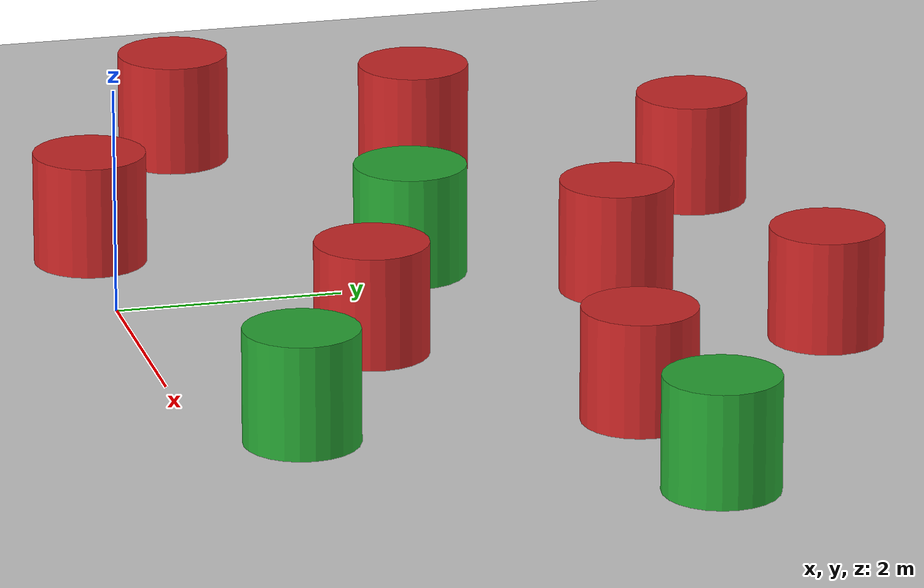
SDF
<sdf version="1.7">
 <world name="default">
  <model name="ground_plane">
   <static>1</static>
   <link name="link">
    <collision name="collision">
     <geometry><plane><normal>0 0 1</normal><size>100 100</size></plane></geometry>
     <surface>
      <contact><collide_bitmask>65535</collide_bitmask></contact>
      <friction><ode><mu>100</mu><mu2>50</mu2></ode></friction>
     </surface>
    </collision>
    <visual name="visual">
     <cast_shadows>0</cast_shadows>
     <geometry><plane><normal>0 0 1</normal><size>100 100</size></plane></geometry>
     <material>
      <script><uri>file://media/materials/scripts/gazebo.material</uri><name>Gazebo/Grey</name></script>
     </material>
    </visual>
   </link>
  </model>
  <model name="Astar_Dij_test.world_0">
   <link name="link_0">
    <inertial>
     <mass>20</mass>
     <inertia><ixx>2.91667</ixx><ixy>0</ixy><ixz>0</ixz><iyy>2.91667</iyy><iyz>0</iyz><izz>2.5</izz></inertia>
    </inertial>
    <pose>3.54109 -0.119892 0 0 -0 0</pose>
    <visual name="visual">
     <geometry><cylinder><radius>0.5</radius><length>1</length></cylinder></geometry>
     <material>
      <lighting>1</lighting>
      <script><uri>file://media/materials/scripts/gazebo.material</uri><name>Gazebo/Red</name></script>
      <shader type="pixel"><normal_map>__default__</normal_map></shader>
      <ambient>1 0 0 1</ambient>
      <diffuse>1 0 0 1</diffuse>
      <specular>0.1 0.1 0.1 1</specular>
      <emissive>0 0 0 1</emissive>
     </material>
    </visual>
    <collision name="collision">
     <geometry><cylinder><radius>0.5</radius><length>1</length></cylinder></geometry>
     <surface>
      <friction>
       <ode><mu>1</mu><mu2>1</mu2><fdir1>0 0 0</fdir1><slip1>0</slip1><slip2>0</slip2></ode>
       <torsional>
        <coefficient>1</coefficient>
        <patch_radius>0</patch_radius>
        <surface_radius>0</surface_radius>
        <use_patch_radius>1</use_patch_radius>
        <ode><slip>0</slip></ode>
       </torsional>
      </friction>
      <bounce><restitution_coefficient>0</restitution_coefficient><threshold>1e+06</threshold></bounce>
      <contact>
       <collide_without_contact>0</collide_without_contact>
       <collide_without_contact_bitmask>1</collide_without_contact_bitmask>
       <collide_bitmask>1</collide_bitmask>
       <ode>
        <soft_cfm>0</soft_cfm>
        <soft_erp>0.2</soft_erp>
        <kp>1e+13</kp>
        <kd>1</kd>
        <max_vel>0.01</max_vel>
        <min_depth>0</min_depth>
       </ode>
       <bullet>
        <split_impulse>1</split_impulse>
        <split_impulse_penetration_threshold>-0.01</split_impulse_penetration_threshold>
        <soft_cfm>0</soft_cfm>
        <soft_erp>0.2</soft_erp>
        <kp>1e+13</kp>
        <kd>1</kd>
       </bullet>
      </contact>
     </surface>
    </collision>
   </link>
   <link name="link_0_clone">
    <inertial>
     <mass>20</mass>
     <inertia><ixx>2.91667</ixx><ixy>0</ixy><ixz>0</ixz><iyy>2.91667</iyy><iyz>0</iyz><izz>2.5</izz></inertia>
    </inertial>
    <pose>5.36627 -3.50187 0 0 -0 0</pose>
    <visual name="visual">
     <geometry><cylinder><radius>0.5</radius><length>1</length></cylinder></geometry>
     <material>
      <lighting>1</lighting>
      <script><uri>file://media/materials/scripts/gazebo.material</uri><name>Gazebo/Red</name></script>
      <shader type="pixel"><normal_map>__default__</normal_map></shader>
      <ambient>1 0 0 1</ambient>
      <diffuse>1 0 0 1</diffuse>
      <specular>0.1 0.1 0.1 1</specular>
      <emissive>0 0 0 1</emissive>
     </material>
    </visual>
    <collision name="collision">
     <geometry><cylinder><radius>0.5</radius><length>1</length></cylinder></geometry>
     <surface>
      <friction>
       <ode><mu>1</mu><mu2>1</mu2><fdir1>0 0 0</fdir1><slip1>0</slip1><slip2>0</slip2></ode>
       <torsional>
        <coefficient>1</coefficient>
        <patch_radius>0</patch_radius>
        <surface_radius>0</surface_radius>
        <use_patch_radius>1</use_patch_radius>
        <ode><slip>0</slip></ode>
       </torsional>
      </friction>
      <bounce><restitution_coefficient>0</restitution_coefficient><threshold>1e+06</threshold></bounce>
      <contact>
       <collide_without_contact>0</collide_without_contact>
       <collide_without_contact_bitmask>1</collide_without_contact_bitmask>
       <collide_bitmask>1</collide_bitmask>
       <ode>
        <soft_cfm>0</soft_cfm>
        <soft_erp>0.2</soft_erp>
        <kp>1e+13</kp>
        <kd>1</kd>
        <max_vel>0.01</max_vel>
        <min_depth>0</min_depth>
       </ode>
       <bullet>
        <split_impulse>1</split_impulse>
        <split_impulse_penetration_threshold>-0.01</split_impulse_penetration_threshold>
        <soft_cfm>0</soft_cfm>
        <soft_erp>0.2</soft_erp>
        <kp>1e+13</kp>
        <kd>1</kd>
       </bullet>
      </contact>
     </surface>
    </collision>
   </link>
   <link name="link_0_clone_1">
    <inertial>
     <mass>20</mass>
     <inertia><ixx>2.91667</ixx><ixy>0</ixy><ixz>0</ixz><iyy>2.91667</iyy><iyz>0</iyz><izz>2.5</izz></inertia>
    </inertial>
    <pose>8.3259 -1.65884 0 0 -0 0</pose>
    <visual name="visual">
     <geometry><cylinder><radius>0.5</radius><length>1</length></cylinder></geometry>
     <material>
      <lighting>1</lighting>
      <script><uri>file://media/materials/scripts/gazebo.material</uri><name>Gazebo/Red</name></script>
      <shader type="pixel"><normal_map>__default__</normal_map></shader>
      <ambient>1 0 0 1</ambient>
      <diffuse>1 0 0 1</diffuse>
      <specular>0.1 0.1 0.1 1</specular>
      <emissive>0 0 0 1</emissive>
     </material>
    </visual>
    <collision name="collision">
     <geometry><cylinder><radius>0.5</radius><length>1</length></cylinder></geometry>
     <surface>
      <friction>
       <ode><mu>1</mu><mu2>1</mu2><fdir1>0 0 0</fdir1><slip1>0</slip1><slip2>0</slip2></ode>
       <torsional>
        <coefficient>1</coefficient>
        <patch_radius>0</patch_radius>
        <surface_radius>0</surface_radius>
        <use_patch_radius>1</use_patch_radius>
        <ode><slip>0</slip></ode>
       </torsional>
      </friction>
      <bounce><restitution_coefficient>0</restitution_coefficient><threshold>1e+06</threshold></bounce>
      <contact>
       <collide_without_contact>0</collide_without_contact>
       <collide_without_contact_bitmask>1</collide_without_contact_bitmask>
       <collide_bitmask>1</collide_bitmask>
       <ode>
        <soft_cfm>0</soft_cfm>
        <soft_erp>0.2</soft_erp>
        <kp>1e+13</kp>
        <kd>1</kd>
        <max_vel>0.01</max_vel>
        <min_depth>0</min_depth>
       </ode>
       <bullet>
        <split_impulse>1</split_impulse>
        <split_impulse_penetration_threshold>-0.01</split_impulse_penetration_threshold>
        <soft_cfm>0</soft_cfm>
        <soft_erp>0.2</soft_erp>
        <kp>1e+13</kp>
        <kd>1</kd>
       </bullet>
      </contact>
     </surface>
    </collision>
   </link>
   <link name="link_0_clone_14">
    <inertial>
     <mass>20</mass>
     <inertia><ixx>2.91667</ixx><ixy>0</ixy><ixz>0</ixz><iyy>2.91667</iyy><iyz>0</iyz><izz>2.5</izz></inertia>
    </inertial>
    <pose>2.70846 -2.17544 0 0 -0 0</pose>
    <visual name="visual">
     <geometry><cylinder><radius>0.5</radius><length>1</length></cylinder></geometry>
     <material>
      <lighting>1</lighting>
      <script><uri>file://media/materials/scripts/gazebo.material</uri><name>Gazebo/Red</name></script>
      <shader type="pixel"><normal_map>__default__</normal_map></shader>
      <ambient>1 0 0 1</ambient>
      <diffuse>1 0 0 1</diffuse>
      <specular>0.1 0.1 0.1 1</specular>
      <emissive>0 0 0 1</emissive>
     </material>
    </visual>
    <collision name="collision">
     <geometry><cylinder><radius>0.5</radius><length>1</length></cylinder></geometry>
     <surface>
      <friction>
       <ode><mu>1</mu><mu2>1</mu2><fdir1>0 0 0</fdir1><slip1>0</slip1><slip2>0</slip2></ode>
       <torsional>
        <coefficient>1</coefficient>
        <patch_radius>0</patch_radius>
        <surface_radius>0</surface_radius>
        <use_patch_radius>1</use_patch_radius>
        <ode><slip>0</slip></ode>
       </torsional>
      </friction>
      <bounce><restitution_coefficient>0</restitution_coefficient><threshold>1e+06</threshold></bounce>
      <contact>
       <collide_without_contact>0</collide_without_contact>
       <collide_without_contact_bitmask>1</collide_without_contact_bitmask>
       <collide_bitmask>1</collide_bitmask>
       <ode>
        <soft_cfm>0</soft_cfm>
        <soft_erp>0.2</soft_erp>
        <kp>1e+13</kp>
        <kd>1</kd>
        <max_vel>0.01</max_vel>
        <min_depth>0</min_depth>
       </ode>
       <bullet>
        <split_impulse>1</split_impulse>
        <split_impulse_penetration_threshold>-0.01</split_impulse_penetration_threshold>
        <soft_cfm>0</soft_cfm>
        <soft_erp>0.2</soft_erp>
        <kp>1e+13</kp>
        <kd>1</kd>
       </bullet>
      </contact>
     </surface>
    </collision>
   </link>
   <link name="link_0_clone_19">
    <inertial>
     <mass>20</mass>
     <inertia><ixx>2.91667</ixx><ixy>0</ixy><ixz>0</ixz><iyy>2.91667</iyy><iyz>0</iyz><izz>2.5</izz></inertia>
    </inertial>
    <pose>4.98594 2.10137 0 0 -0 0</pose>
    <visual name="visual">
     <geometry><cylinder><radius>0.5</radius><length>1</length></cylinder></geometry>
     <material>
      <lighting>1</lighting>
      <script><uri>file://media/materials/scripts/gazebo.material</uri><name>Gazebo/Red</name></script>
      <shader type="pixel"><normal_map>__default__</normal_map></shader>
      <ambient>1 0 0 1</ambient>
      <diffuse>1 0 0 1</diffuse>
      <specular>0.1 0.1 0.1 1</specular>
      <emissive>0 0 0 1</emissive>
     </material>
    </visual>
    <collision name="collision">
     <geometry><cylinder><radius>0.5</radius><length>1</length></cylinder></geometry>
     <surface>
      <friction>
       <ode><mu>1</mu><mu2>1</mu2><fdir1>0 0 0</fdir1><slip1>0</slip1><slip2>0</slip2></ode>
       <torsional>
        <coefficient>1</coefficient>
        <patch_radius>0</patch_radius>
        <surface_radius>0</surface_radius>
        <use_patch_radius>1</use_patch_radius>
        <ode><slip>0</slip></ode>
       </torsional>
      </friction>
      <bounce><restitution_coefficient>0</restitution_coefficient><threshold>1e+06</threshold></bounce>
      <contact>
       <collide_without_contact>0</collide_without_contact>
       <collide_without_contact_bitmask>1</collide_without_contact_bitmask>
       <collide_bitmask>1</collide_bitmask>
       <ode>
        <soft_cfm>0</soft_cfm>
        <soft_erp>0.2</soft_erp>
        <kp>1e+13</kp>
        <kd>1</kd>
        <max_vel>0.01</max_vel>
        <min_depth>0</min_depth>
       </ode>
       <bullet>
        <split_impulse>1</split_impulse>
        <split_impulse_penetration_threshold>-0.01</split_impulse_penetration_threshold>
        <soft_cfm>0</soft_cfm>
        <soft_erp>0.2</soft_erp>
        <kp>1e+13</kp>
        <kd>1</kd>
       </bullet>
      </contact>
     </surface>
    </collision>
   </link>
   <link name="link_0_clone_20">
    <inertial>
     <mass>20</mass>
     <inertia><ixx>2.91667</ixx><ixy>0</ixy><ixz>0</ixz><iyy>2.91667</iyy><iyz>0</iyz><izz>2.5</izz></inertia>
    </inertial>
    <pose>7.23174 0.796534 0 0 -0 0</pose>
    <visual name="visual">
     <geometry><cylinder><radius>0.5</radius><length>1</length></cylinder></geometry>
     <material>
      <lighting>1</lighting>
      <script><uri>file://media/materials/scripts/gazebo.material</uri><name>Gazebo/Red</name></script>
      <shader type="pixel"><normal_map>__default__</normal_map></shader>
      <ambient>1 0 0 1</ambient>
      <diffuse>1 0 0 1</diffuse>
      <specular>0.1 0.1 0.1 1</specular>
      <emissive>0 0 0 1</emissive>
     </material>
    </visual>
    <collision name="collision">
     <geometry><cylinder><radius>0.5</radius><length>1</length></cylinder></geometry>
     <surface>
      <friction>
       <ode><mu>1</mu><mu2>1</mu2><fdir1>0 0 0</fdir1><slip1>0</slip1><slip2>0</slip2></ode>
       <torsional>
        <coefficient>1</coefficient>
        <patch_radius>0</patch_radius>
        <surface_radius>0</surface_radius>
        <use_patch_radius>1</use_patch_radius>
        <ode><slip>0</slip></ode>
       </torsional>
      </friction>
      <bounce><restitution_coefficient>0</restitution_coefficient><threshold>1e+06</threshold></bounce>
      <contact>
       <collide_without_contact>0</collide_without_contact>
       <collide_without_contact_bitmask>1</collide_without_contact_bitmask>
       <collide_bitmask>1</collide_bitmask>
       <ode>
        <soft_cfm>0</soft_cfm>
        <soft_erp>0.2</soft_erp>
        <kp>1e+13</kp>
        <kd>1</kd>
        <max_vel>0.01</max_vel>
        <min_depth>0</min_depth>
       </ode>
       <bullet>
        <split_impulse>1</split_impulse>
        <split_impulse_penetration_threshold>-0.01</split_impulse_penetration_threshold>
        <soft_cfm>0</soft_cfm>
        <soft_erp>0.2</soft_erp>
        <kp>1e+13</kp>
        <kd>1</kd>
       </bullet>
      </contact>
     </surface>
    </collision>
   </link>
   <link name="link_0_clone_4">
    <inertial>
     <mass>20</mass>
     <inertia><ixx>2.91667</ixx><ixy>0</ixy><ixz>0</ixz><iyy>2.91667</iyy><iyz>0</iyz><izz>2.5</izz></inertia>
    </inertial>
    <pose>8.88155 2.22109 0 0 -0 0</pose>
    <visual name="visual">
     <geometry><cylinder><radius>0.5</radius><length>1</length></cylinder></geometry>
     <material>
      <lighting>1</lighting>
      <script><uri>file://media/materials/scripts/gazebo.material</uri><name>Gazebo/Red</name></script>
      <shader type="pixel"><normal_map>__default__</normal_map></shader>
      <ambient>1 0 0 1</ambient>
      <diffuse>1 0 0 1</diffuse>
      <specular>0.1 0.1 0.1 1</specular>
      <emissive>0 0 0 1</emissive>
     </material>
    </visual>
    <collision name="collision">
     <geometry><cylinder><radius>0.5</radius><length>1</length></cylinder></geometry>
     <surface>
      <friction>
       <ode><mu>1</mu><mu2>1</mu2><fdir1>0 0 0</fdir1><slip1>0</slip1><slip2>0</slip2></ode>
       <torsional>
        <coefficient>1</coefficient>
        <patch_radius>0</patch_radius>
        <surface_radius>0</surface_radius>
        <use_patch_radius>1</use_patch_radius>
        <ode><slip>0</slip></ode>
       </torsional>
      </friction>
      <bounce><restitution_coefficient>0</restitution_coefficient><threshold>1e+06</threshold></bounce>
      <contact>
       <collide_without_contact>0</collide_without_contact>
       <collide_without_contact_bitmask>1</collide_without_contact_bitmask>
       <collide_bitmask>1</collide_bitmask>
       <ode>
        <soft_cfm>0</soft_cfm>
        <soft_erp>0.2</soft_erp>
        <kp>1e+13</kp>
        <kd>1</kd>
        <max_vel>0.01</max_vel>
        <min_depth>0</min_depth>
       </ode>
       <bullet>
        <split_impulse>1</split_impulse>
        <split_impulse_penetration_threshold>-0.01</split_impulse_penetration_threshold>
        <soft_cfm>0</soft_cfm>
        <soft_erp>0.2</soft_erp>
        <kp>1e+13</kp>
        <kd>1</kd>
       </bullet>
      </contact>
     </surface>
    </collision>
   </link>
   <link name="link_0_clone_5">
    <inertial>
     <mass>20</mass>
     <inertia><ixx>2.91667</ixx><ixy>0</ixy><ixz>0</ixz><iyy>2.91667</iyy><iyz>0</iyz><izz>2.5</izz></inertia>
    </inertial>
    <pose>10.4978 0.118434 0 0 -0 0</pose>
    <visual name="visual">
     <geometry><cylinder><radius>0.5</radius><length>1</length></cylinder></geometry>
     <material>
      <lighting>1</lighting>
      <script><uri>file://media/materials/scripts/gazebo.material</uri><name>Gazebo/Red</name></script>
      <shader type="pixel"><normal_map>__default__</normal_map></shader>
      <ambient>1 0 0 1</ambient>
      <diffuse>1 0 0 1</diffuse>
      <specular>0.1 0.1 0.1 1</specular>
      <emissive>0 0 0 1</emissive>
     </material>
    </visual>
    <collision name="collision">
     <geometry><cylinder><radius>0.5</radius><length>1</length></cylinder></geometry>
     <surface>
      <friction>
       <ode><mu>1</mu><mu2>1</mu2><fdir1>0 0 0</fdir1><slip1>0</slip1><slip2>0</slip2></ode>
       <torsional>
        <coefficient>1</coefficient>
        <patch_radius>0</patch_radius>
        <surface_radius>0</surface_radius>
        <use_patch_radius>1</use_patch_radius>
        <ode><slip>0</slip></ode>
       </torsional>
      </friction>
      <bounce><restitution_coefficient>0</restitution_coefficient><threshold>1e+06</threshold></bounce>
      <contact>
       <collide_without_contact>0</collide_without_contact>
       <collide_without_contact_bitmask>1</collide_without_contact_bitmask>
       <collide_bitmask>1</collide_bitmask>
       <ode>
        <soft_cfm>0</soft_cfm>
        <soft_erp>0.2</soft_erp>
        <kp>1e+13</kp>
        <kd>1</kd>
        <max_vel>0.01</max_vel>
        <min_depth>0</min_depth>
       </ode>
       <bullet>
        <split_impulse>1</split_impulse>
        <split_impulse_penetration_threshold>-0.01</split_impulse_penetration_threshold>
        <soft_cfm>0</soft_cfm>
        <soft_erp>0.2</soft_erp>
        <kp>1e+13</kp>
        <kd>1</kd>
       </bullet>
      </contact>
     </surface>
    </collision>
   </link>
   <link name="link_clone_10">
    <inertial>
     <mass>20</mass>
     <inertia><ixx>2.91667</ixx><ixy>0</ixy><ixz>0</ixz><iyy>2.91667</iyy><iyz>0</iyz><izz>2.5</izz></inertia>
    </inertial>
    <pose>10.3463 -2.74345 0 0 -0 0</pose>
    <visual name="visual">
     <geometry><cylinder><radius>0.5</radius><length>1</length></cylinder></geometry>
     <material>
      <script><name>Gazebo/Green</name><uri>file://media/materials/scripts/gazebo.material</uri></script>
      <shader type="pixel"><normal_map>__default__</normal_map></shader>
      <ambient>0 1 0 1</ambient>
      <diffuse>0 1 0 1</diffuse>
      <specular>0.1 0.1 0.1 1</specular>
      <emissive>0 0 0 1</emissive>
     </material>
    </visual>
    <collision name="collision">
     <geometry><cylinder><radius>0.5</radius><length>1</length></cylinder></geometry>
     <surface>
      <friction>
       <ode><mu>1</mu><mu2>1</mu2><fdir1>0 0 0</fdir1><slip1>0</slip1><slip2>0</slip2></ode>
       <torsional>
        <coefficient>1</coefficient>
        <patch_radius>0</patch_radius>
        <surface_radius>0</surface_radius>
        <use_patch_radius>1</use_patch_radius>
        <ode><slip>0</slip></ode>
       </torsional>
      </friction>
      <bounce><restitution_coefficient>0</restitution_coefficient><threshold>1e+06</threshold></bounce>
      <contact>
       <collide_without_contact>0</collide_without_contact>
       <collide_without_contact_bitmask>1</collide_without_contact_bitmask>
       <collide_bitmask>1</collide_bitmask>
       <ode>
        <soft_cfm>0</soft_cfm>
        <soft_erp>0.2</soft_erp>
        <kp>1e+13</kp>
        <kd>1</kd>
        <max_vel>0.01</max_vel>
        <min_depth>0</min_depth>
       </ode>
       <bullet>
        <split_impulse>1</split_impulse>
        <split_impulse_penetration_threshold>-0.01</split_impulse_penetration_threshold>
        <soft_cfm>0</soft_cfm>
        <soft_erp>0.2</soft_erp>
        <kp>1e+13</kp>
        <kd>1</kd>
       </bullet>
      </contact>
     </surface>
    </collision>
   </link>
   <link name="link_clone_12">
    <inertial>
     <mass>20</mass>
     <inertia><ixx>2.91667</ixx><ixy>0</ixy><ixz>0</ixz><iyy>2.91667</iyy><iyz>0</iyz><izz>2.5</izz></inertia>
    </inertial>
    <pose>6.3534 -0.83806 0 0 -0 0</pose>
    <visual name="visual">
     <geometry><cylinder><radius>0.5</radius><length>1</length></cylinder></geometry>
     <material>
      <script><name>Gazebo/Green</name><uri>file://media/materials/scripts/gazebo.material</uri></script>
      <shader type="pixel"><normal_map>__default__</normal_map></shader>
      <ambient>0 1 0 1</ambient>
      <diffuse>0 1 0 1</diffuse>
      <specular>0.1 0.1 0.1 1</specular>
      <emissive>0 0 0 1</emissive>
     </material>
    </visual>
    <collision name="collision">
     <geometry><cylinder><radius>0.5</radius><length>1</length></cylinder></geometry>
     <surface>
      <friction>
       <ode><mu>1</mu><mu2>1</mu2><fdir1>0 0 0</fdir1><slip1>0</slip1><slip2>0</slip2></ode>
       <torsional>
        <coefficient>1</coefficient>
        <patch_radius>0</patch_radius>
        <surface_radius>0</surface_radius>
        <use_patch_radius>1</use_patch_radius>
        <ode><slip>0</slip></ode>
       </torsional>
      </friction>
      <bounce><restitution_coefficient>0</restitution_coefficient><threshold>1e+06</threshold></bounce>
      <contact>
       <collide_without_contact>0</collide_without_contact>
       <collide_without_contact_bitmask>1</collide_without_contact_bitmask>
       <collide_bitmask>1</collide_bitmask>
       <ode>
        <soft_cfm>0</soft_cfm>
        <soft_erp>0.2</soft_erp>
        <kp>1e+13</kp>
        <kd>1</kd>
        <max_vel>0.01</max_vel>
        <min_depth>0</min_depth>
       </ode>
       <bullet>
        <split_impulse>1</split_impulse>
        <split_impulse_penetration_threshold>-0.01</split_impulse_penetration_threshold>
        <soft_cfm>0</soft_cfm>
        <soft_erp>0.2</soft_erp>
        <kp>1e+13</kp>
        <kd>1</kd>
       </bullet>
      </contact>
     </surface>
    </collision>
   </link>
   <link name="link_clone_4">
    <inertial>
     <mass>20</mass>
     <inertia><ixx>2.91667</ixx><ixy>0</ixy><ixz>0</ixz><iyy>2.91667</iyy><iyz>0</iyz><izz>2.5</izz></inertia>
    </inertial>
    <pose>12.2972 0.323097 0 0 -0 0</pose>
    <visual name="visual">
     <geometry><cylinder><radius>0.5</radius><length>1</length></cylinder></geometry>
     <material>
      <script><name>Gazebo/Green</name><uri>file://media/materials/scripts/gazebo.material</uri></script>
      <shader type="pixel"><normal_map>__default__</normal_map></shader>
      <ambient>0 1 0 1</ambient>
      <diffuse>0 1 0 1</diffuse>
      <specular>0.1 0.1 0.1 1</specular>
      <emissive>0 0 0 1</emissive>
     </material>
    </visual>
    <collision name="collision">
     <geometry><cylinder><radius>0.5</radius><length>1</length></cylinder></geometry>
     <surface>
      <friction>
       <ode><mu>1</mu><mu2>1</mu2><fdir1>0 0 0</fdir1><slip1>0</slip1><slip2>0</slip2></ode>
       <torsional>
        <coefficient>1</coefficient>
        <patch_radius>0</patch_radius>
        <surface_radius>0</surface_radius>
        <use_patch_radius>1</use_patch_radius>
        <ode><slip>0</slip></ode>
       </torsional>
      </friction>
      <bounce><restitution_coefficient>0</restitution_coefficient><threshold>1e+06</threshold></bounce>
      <contact>
       <collide_without_contact>0</collide_without_contact>
       <collide_without_contact_bitmask>1</collide_without_contact_bitmask>
       <collide_bitmask>1</collide_bitmask>
       <ode>
        <soft_cfm>0</soft_cfm>
        <soft_erp>0.2</soft_erp>
        <kp>1e+13</kp>
        <kd>1</kd>
        <max_vel>0.01</max_vel>
        <min_depth>0</min_depth>
       </ode>
       <bullet>
        <split_impulse>1</split_impulse>
        <split_impulse_penetration_threshold>-0.01</split_impulse_penetration_threshold>
        <soft_cfm>0</soft_cfm>
        <soft_erp>0.2</soft_erp>
        <kp>1e+13</kp>
        <kd>1</kd>
       </bullet>
      </contact>
     </surface>
    </collision>
   </link>
   <static>0</static>
   <pose>-6.75878 3.55996 0.5 0 -0 0</pose>
  </model>
 </world>
</sdf>
